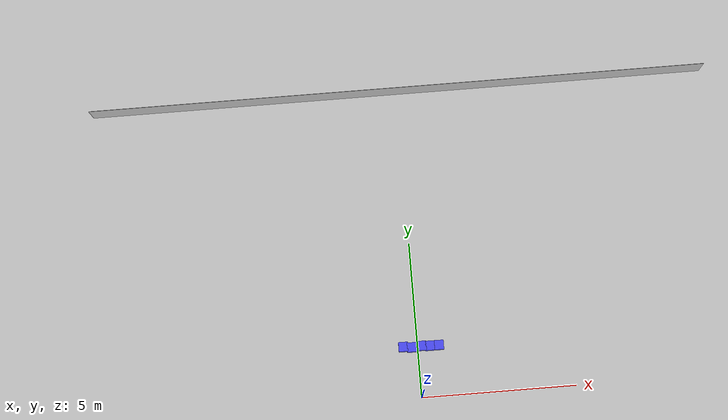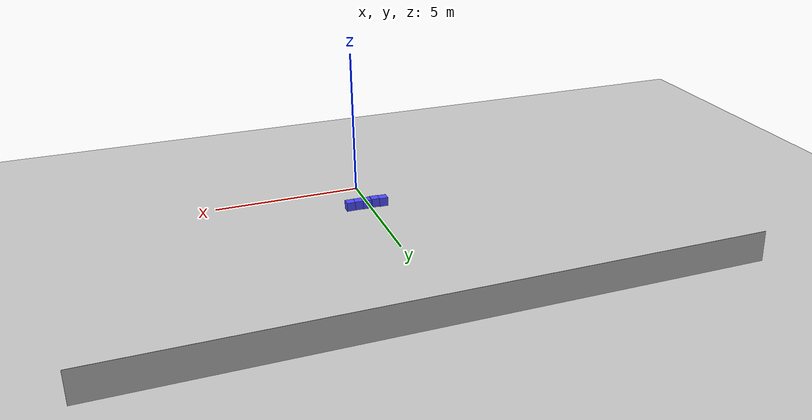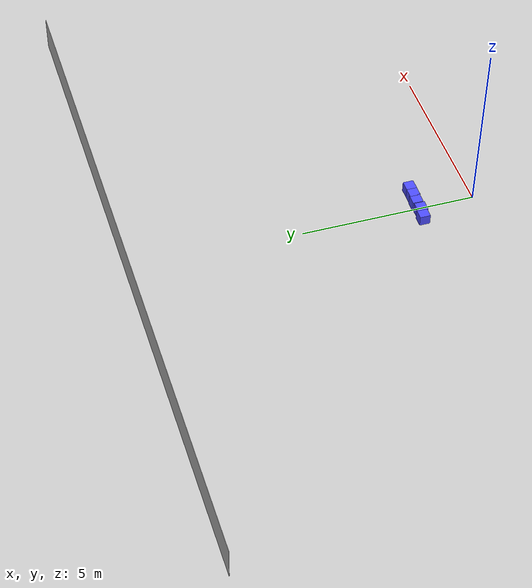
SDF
<sdf version="1.10">
 <world name="default">
  <model name="ground_plane">
   <static>true</static>
   <link name="link">
    <collision name="collision">
     <geometry><plane><normal>0 0 1</normal><size>1 1</size></plane></geometry>
    </collision>
    <visual name="visual">
     <geometry><plane><normal>0 0 1</normal><size>100 100</size></plane></geometry>
     <material>
      <ambient>0.800000012 0.800000012 0.800000012 1</ambient>
      <diffuse>0.800000012 0.800000012 0.800000012 1</diffuse>
      <specular>0.800000012 0.800000012 0.800000012 1</specular>
     </material>
    </visual>
    <inertial>
     <mass>1</mass>
     <inertia><ixx>1</ixx><ixy>0</ixy><ixz>0</ixz><iyy>1</iyy><iyz>0</iyz><izz>1</izz></inertia>
    </inertial>
   </link>
  </model>
  <model name="wall_3">
   <pose>0 10 .5 0 0 0</pose>
   <static>true</static>
   <link name="link">
    <collision name="collision"><geometry><box><size>20 .01 1</size></box></geometry></collision>
    <visual name="visual">
     <geometry><box><size>20 .01 1</size></box></geometry>
     <material>
      <ambient>0.7 0.7 0.7 1</ambient>
      <diffuse>0.7 0.7 0.7 1</diffuse>
      <specular>0.7 0.7 0.7 1</specular>
     </material>
    </visual>
    <inertial>
     <mass>1</mass>
     <inertia><ixx>1</ixx><ixy>0</ixy><ixz>0</ixz><iyy>1</iyy><iyz>0</iyz><izz>1</izz></inertia>
    </inertial>
   </link>
  </model>
  <model name="Box_Blue_clone_0">
   <link name="link_0">
    <inertial>
     <mass>1</mass>
     <inertia>
      <ixx>0.166667</ixx>
      <ixy>0</ixy>
      <ixz>0</ixz>
      <iyy>0.166667</iyy>
      <iyz>0</iyz>
      <izz>0.166667</izz>
     </inertia>
    </inertial>
    <visual name="visual">
     <geometry><box><size>0.3 0.3 0.3</size></box></geometry>
     <material>
      <lighting>1</lighting>
      <script><uri>file://media/materials/scripts/gazebo.material</uri><name>Gazebo/Grey</name></script>
      <ambient>0.3 0.3 1 1</ambient>
      <diffuse>0.7 0.7 0.7 1</diffuse>
      <specular>0.01 0.01 0.01 1</specular>
      <emissive>0 0 0 1</emissive>
      <shader type="vertex"><normal_map>__default__</normal_map></shader>
     </material>
    </visual>
    <collision name="collision">
     <geometry><box><size>0.3 0.3 0.3</size></box></geometry>
     <surface>
      <friction>
       <ode><mu>1</mu><mu2>1</mu2><fdir1>0 0 0</fdir1><slip1>0</slip1><slip2>0</slip2></ode>
       <torsional>
        <coefficient>1</coefficient>
        <patch_radius>0</patch_radius>
        <surface_radius>0</surface_radius>
        <use_patch_radius>1</use_patch_radius>
        <ode><slip>0</slip></ode>
       </torsional>
      </friction>
      <bounce><restitution_coefficient>0</restitution_coefficient><threshold>1e+06</threshold></bounce>
      <contact>
       <collide_without_contact>0</collide_without_contact>
       <collide_without_contact_bitmask>1</collide_without_contact_bitmask>
       <collide_bitmask>1</collide_bitmask>
       <ode>
        <soft_cfm>0</soft_cfm>
        <soft_erp>0.2</soft_erp>
        <kp>1e+13</kp>
        <kd>1</kd>
        <max_vel>0.01</max_vel>
        <min_depth>0</min_depth>
       </ode>
       <bullet>
        <split_impulse>1</split_impulse>
        <split_impulse_penetration_threshold>-0.01</split_impulse_penetration_threshold>
        <soft_cfm>0</soft_cfm>
        <soft_erp>0.2</soft_erp>
        <kp>1e+13</kp>
        <kd>1</kd>
       </bullet>
      </contact>
     </surface>
    </collision>
   </link>
   <static>0</static>
   <pose>0.689511 1.63159 0.15 0 -0 0</pose>
  </model>
  <model name="Box_Blue_clone_1">
   <link name="link_0">
    <inertial>
     <mass>1</mass>
     <inertia>
      <ixx>0.166667</ixx>
      <ixy>0</ixy>
      <ixz>0</ixz>
      <iyy>0.166667</iyy>
      <iyz>0</iyz>
      <izz>0.166667</izz>
     </inertia>
    </inertial>
    <visual name="visual">
     <geometry><box><size>0.3 0.3 0.3</size></box></geometry>
     <material>
      <lighting>1</lighting>
      <script><uri>file://media/materials/scripts/gazebo.material</uri><name>Gazebo/Grey</name></script>
      <ambient>0.3 0.3 1 1</ambient>
      <diffuse>0.7 0.7 0.7 1</diffuse>
      <specular>0.01 0.01 0.01 1</specular>
      <emissive>0 0 0 1</emissive>
      <shader type="vertex"><normal_map>__default__</normal_map></shader>
     </material>
    </visual>
    <collision name="collision">
     <geometry><box><size>0.3 0.3 0.3</size></box></geometry>
     <surface>
      <friction>
       <ode><mu>1</mu><mu2>1</mu2><fdir1>0 0 0</fdir1><slip1>0</slip1><slip2>0</slip2></ode>
       <torsional>
        <coefficient>1</coefficient>
        <patch_radius>0</patch_radius>
        <surface_radius>0</surface_radius>
        <use_patch_radius>1</use_patch_radius>
        <ode><slip>0</slip></ode>
       </torsional>
      </friction>
      <bounce><restitution_coefficient>0</restitution_coefficient><threshold>1e+06</threshold></bounce>
      <contact>
       <collide_without_contact>0</collide_without_contact>
       <collide_without_contact_bitmask>1</collide_without_contact_bitmask>
       <collide_bitmask>1</collide_bitmask>
       <ode>
        <soft_cfm>0</soft_cfm>
        <soft_erp>0.2</soft_erp>
        <kp>1e+13</kp>
        <kd>1</kd>
        <max_vel>0.01</max_vel>
        <min_depth>0</min_depth>
       </ode>
       <bullet>
        <split_impulse>1</split_impulse>
        <split_impulse_penetration_threshold>-0.01</split_impulse_penetration_threshold>
        <soft_cfm>0</soft_cfm>
        <soft_erp>0.2</soft_erp>
        <kp>1e+13</kp>
        <kd>1</kd>
       </bullet>
      </contact>
     </surface>
    </collision>
   </link>
   <static>0</static>
   <pose>0.402234 1.63222 0.15 0 -0 0</pose>
  </model>
  <model name="Box_Blue_clone_2">
   <link name="link_0">
    <inertial>
     <mass>1</mass>
     <inertia>
      <ixx>0.166667</ixx>
      <ixy>0</ixy>
      <ixz>0</ixz>
      <iyy>0.166667</iyy>
      <iyz>0</iyz>
      <izz>0.166667</izz>
     </inertia>
    </inertial>
    <visual name="visual">
     <geometry><box><size>0.3 0.3 0.3</size></box></geometry>
     <material>
      <lighting>1</lighting>
      <script><uri>file://media/materials/scripts/gazebo.material</uri><name>Gazebo/Grey</name></script>
      <ambient>0.3 0.3 1 1</ambient>
      <diffuse>0.7 0.7 0.7 1</diffuse>
      <specular>0.01 0.01 0.01 1</specular>
      <emissive>0 0 0 1</emissive>
      <shader type="vertex"><normal_map>__default__</normal_map></shader>
     </material>
    </visual>
    <collision name="collision">
     <geometry><box><size>0.3 0.3 0.3</size></box></geometry>
     <surface>
      <friction>
       <ode><mu>1</mu><mu2>1</mu2><fdir1>0 0 0</fdir1><slip1>0</slip1><slip2>0</slip2></ode>
       <torsional>
        <coefficient>1</coefficient>
        <patch_radius>0</patch_radius>
        <surface_radius>0</surface_radius>
        <use_patch_radius>1</use_patch_radius>
        <ode><slip>0</slip></ode>
       </torsional>
      </friction>
      <bounce><restitution_coefficient>0</restitution_coefficient><threshold>1e+06</threshold></bounce>
      <contact>
       <collide_without_contact>0</collide_without_contact>
       <collide_without_contact_bitmask>1</collide_without_contact_bitmask>
       <collide_bitmask>1</collide_bitmask>
       <ode>
        <soft_cfm>0</soft_cfm>
        <soft_erp>0.2</soft_erp>
        <kp>1e+13</kp>
        <kd>1</kd>
        <max_vel>0.01</max_vel>
        <min_depth>0</min_depth>
       </ode>
       <bullet>
        <split_impulse>1</split_impulse>
        <split_impulse_penetration_threshold>-0.01</split_impulse_penetration_threshold>
        <soft_cfm>0</soft_cfm>
        <soft_erp>0.2</soft_erp>
        <kp>1e+13</kp>
        <kd>1</kd>
       </bullet>
      </contact>
     </surface>
    </collision>
   </link>
   <static>0</static>
   <pose>0.128966 1.64837 0.15 0 -0 0</pose>
  </model>
  <model name="Box_Blue_clone_3">
   <link name="link_0">
    <inertial>
     <mass>1</mass>
     <inertia>
      <ixx>0.166667</ixx>
      <ixy>0</ixy>
      <ixz>0</ixz>
      <iyy>0.166667</iyy>
      <iyz>0</iyz>
      <izz>0.166667</izz>
     </inertia>
    </inertial>
    <visual name="visual">
     <geometry><box><size>0.3 0.3 0.3</size></box></geometry>
     <material>
      <lighting>1</lighting>
      <script><uri>file://media/materials/scripts/gazebo.material</uri><name>Gazebo/Grey</name></script>
      <ambient>0.3 0.3 1 1</ambient>
      <diffuse>0.7 0.7 0.7 1</diffuse>
      <specular>0.01 0.01 0.01 1</specular>
      <emissive>0 0 0 1</emissive>
      <shader type="vertex"><normal_map>__default__</normal_map></shader>
     </material>
    </visual>
    <collision name="collision">
     <geometry><box><size>0.3 0.3 0.3</size></box></geometry>
     <surface>
      <friction>
       <ode><mu>1</mu><mu2>1</mu2><fdir1>0 0 0</fdir1><slip1>0</slip1><slip2>0</slip2></ode>
       <torsional>
        <coefficient>1</coefficient>
        <patch_radius>0</patch_radius>
        <surface_radius>0</surface_radius>
        <use_patch_radius>1</use_patch_radius>
        <ode><slip>0</slip></ode>
       </torsional>
      </friction>
      <bounce><restitution_coefficient>0</restitution_coefficient><threshold>1e+06</threshold></bounce>
      <contact>
       <collide_without_contact>0</collide_without_contact>
       <collide_without_contact_bitmask>1</collide_without_contact_bitmask>
       <collide_bitmask>1</collide_bitmask>
       <ode>
        <soft_cfm>0</soft_cfm>
        <soft_erp>0.2</soft_erp>
        <kp>1e+13</kp>
        <kd>1</kd>
        <max_vel>0.01</max_vel>
        <min_depth>0</min_depth>
       </ode>
       <bullet>
        <split_impulse>1</split_impulse>
        <split_impulse_penetration_threshold>-0.01</split_impulse_penetration_threshold>
        <soft_cfm>0</soft_cfm>
        <soft_erp>0.2</soft_erp>
        <kp>1e+13</kp>
        <kd>1</kd>
       </bullet>
      </contact>
     </surface>
    </collision>
   </link>
   <static>0</static>
   <pose>-0.191129 1.62445 0.15 0 -0 0</pose>
  </model>
  <model name="Box_Blue_clone_4">
   <link name="link_0">
    <inertial>
     <mass>1</mass>
     <inertia>
      <ixx>0.166667</ixx>
      <ixy>0</ixy>
      <ixz>0</ixz>
      <iyy>0.166667</iyy>
      <iyz>0</iyz>
      <izz>0.166667</izz>
     </inertia>
    </inertial>
    <visual name="visual">
     <geometry><box><size>0.3 0.3 0.3</size></box></geometry>
     <material>
      <lighting>1</lighting>
      <script><uri>file://media/materials/scripts/gazebo.material</uri><name>Gazebo/Grey</name></script>
      <ambient>0.3 0.3 1 1</ambient>
      <diffuse>0.7 0.7 0.7 1</diffuse>
      <specular>0.01 0.01 0.01 1</specular>
      <emissive>0 0 0 1</emissive>
      <shader type="vertex"><normal_map>__default__</normal_map></shader>
     </material>
    </visual>
    <collision name="collision">
     <geometry><box><size>0.3 0.3 0.3</size></box></geometry>
     <surface>
      <friction>
       <ode><mu>1</mu><mu2>1</mu2><fdir1>0 0 0</fdir1><slip1>0</slip1><slip2>0</slip2></ode>
       <torsional>
        <coefficient>1</coefficient>
        <patch_radius>0</patch_radius>
        <surface_radius>0</surface_radius>
        <use_patch_radius>1</use_patch_radius>
        <ode><slip>0</slip></ode>
       </torsional>
      </friction>
      <bounce><restitution_coefficient>0</restitution_coefficient><threshold>1e+06</threshold></bounce>
      <contact>
       <collide_without_contact>0</collide_without_contact>
       <collide_without_contact_bitmask>1</collide_without_contact_bitmask>
       <collide_bitmask>1</collide_bitmask>
       <ode>
        <soft_cfm>0</soft_cfm>
        <soft_erp>0.2</soft_erp>
        <kp>1e+13</kp>
        <kd>1</kd>
        <max_vel>0.01</max_vel>
        <min_depth>0</min_depth>
       </ode>
       <bullet>
        <split_impulse>1</split_impulse>
        <split_impulse_penetration_threshold>-0.01</split_impulse_penetration_threshold>
        <soft_cfm>0</soft_cfm>
        <soft_erp>0.2</soft_erp>
        <kp>1e+13</kp>
        <kd>1</kd>
       </bullet>
      </contact>
     </surface>
    </collision>
   </link>
   <static>0</static>
   <pose>-0.461823 1.65787 0.15 0 -0 0</pose>
  </model>
 </world>
</sdf>
